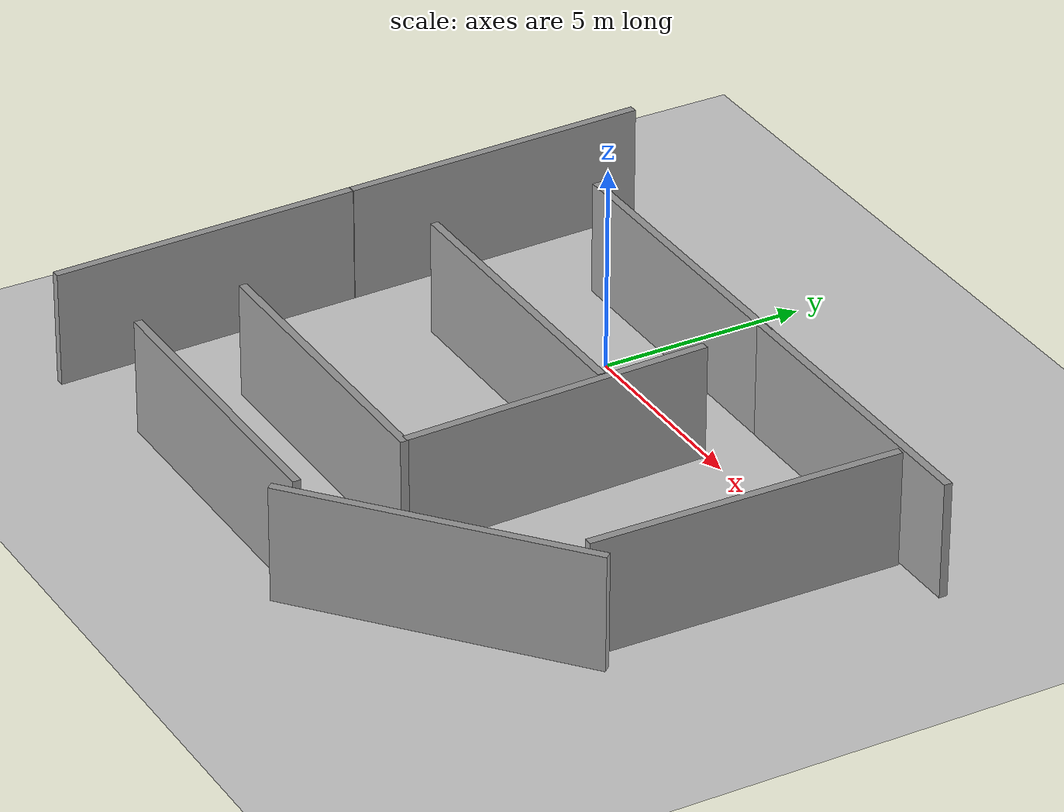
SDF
<sdf version="1.6">
 <world name="default">
  <physics name="default_physics" default="0" type="ode">
   <max_step_size>0.004</max_step_size>
   <real_time_factor>1</real_time_factor>
   <real_time_update_rate>250</real_time_update_rate>
  </physics>
  <light name="sun" type="directional">
   <pose>0 0 10 0 -0 0</pose>
   <diffuse>0.8 0.8 0.8 1</diffuse>
   <specular>0.2 0.2 0.2 1</specular>
   <attenuation>
    <range>1000</range>
    <constant>0.9</constant>
    <linear>0.01</linear>
    <quadratic>0.001</quadratic>
   </attenuation>
   <direction>-0.5 0.1 -0.9</direction>
  </light>
  <model name="ground_plane">
   <static>1</static>
   <link name="link">
    <collision name="collision">
     <geometry><plane><normal>0 0 1</normal><size>100 100</size></plane></geometry>
     <surface>
      <contact><collide_bitmask>65535</collide_bitmask></contact>
      <friction><ode><mu>100</mu><mu2>50</mu2></ode></friction>
     </surface>
    </collision>
    <visual name="visual">
     <cast_shadows>0</cast_shadows>
     <geometry><plane><normal>0 0 1</normal><size>100 100</size></plane></geometry>
     <material>
      <script><uri>file://media/materials/scripts/gazebo.material</uri><name>Gazebo/Grey</name></script>
     </material>
    </visual>
   </link>
  </model>
  <gravity>0 0 -9.8</gravity>
  <magnetic_field>6e-06 2.3e-05 -4.2e-05</magnetic_field>
  <atmosphere type="adiabatic"/>
  <scene><ambient>0.4 0.4 0.4 1</ambient><background>0.7 0.7 0.7 1</background><shadows>1</shadows></scene>
  <audio><device>default</device></audio>
  <spherical_coordinates>
   <surface_model>EARTH_WGS84</surface_model>
   <latitude_deg>0</latitude_deg>
   <longitude_deg>0</longitude_deg>
   <elevation>0</elevation>
   <heading_deg>0</heading_deg>
  </spherical_coordinates>
  <model name="grey_wall">
   <static>1</static>
   <link name="link">
    <pose>0 0 1.4 0 -0 0</pose>
    <collision name="collision"><geometry><box><size>7.5 0.2 2.8</size></box></geometry></collision>
    <visual name="visual">
     <cast_shadows>0</cast_shadows>
     <geometry><box><size>7.5 0.2 2.8</size></box></geometry>
     <material>
      <script>
       <uri>model://grey_wall/materials/scripts</uri>
       <uri>model://grey_wall/materials/textures</uri>
       <name>vrc/grey_wall</name>
      </script>
     </material>
    </visual>
   </link>
   <pose>0.512991 -2.59849 0 0 -0 0</pose>
  </model>
  <model name="grey_wall_0">
   <static>1</static>
   <link name="link">
    <pose>0 0 1.4 0 -0 0</pose>
    <collision name="collision"><geometry><box><size>7.5 0.2 2.8</size></box></geometry></collision>
    <visual name="visual">
     <cast_shadows>0</cast_shadows>
     <geometry><box><size>7.5 0.2 2.8</size></box></geometry>
     <material>
      <script>
       <uri>model://grey_wall/materials/scripts</uri>
       <uri>model://grey_wall/materials/textures</uri>
       <name>vrc/grey_wall</name>
      </script>
     </material>
    </visual>
   </link>
   <pose>0.682592 1.48671 0 0 -0 0</pose>
  </model>
  <model name="grey_wall_1">
   <static>1</static>
   <link name="link">
    <pose>0 0 1.4 0 -0 0</pose>
    <collision name="collision"><geometry><box><size>7.5 0.2 2.8</size></box></geometry></collision>
    <visual name="visual">
     <cast_shadows>0</cast_shadows>
     <geometry><box><size>7.5 0.2 2.8</size></box></geometry>
     <material>
      <script>
       <uri>model://grey_wall/materials/scripts</uri>
       <uri>model://grey_wall/materials/textures</uri>
       <name>vrc/grey_wall</name>
      </script>
     </material>
    </visual>
   </link>
   <pose>7.86812 1.48022 0 0 -0 0</pose>
  </model>
  <model name="grey_wall_2">
   <static>1</static>
   <link name="link">
    <pose>0 0 1.4 0 -0 0</pose>
    <collision name="collision"><geometry><box><size>7.5 0.2 2.8</size></box></geometry></collision>
    <visual name="visual">
     <cast_shadows>0</cast_shadows>
     <geometry><box><size>7.5 0.2 2.8</size></box></geometry>
     <material>
      <script>
       <uri>model://grey_wall/materials/scripts</uri>
       <uri>model://grey_wall/materials/textures</uri>
       <name>vrc/grey_wall</name>
      </script>
     </material>
    </visual>
   </link>
   <pose>4.42421 -3.79335 0 0 0 -1.54043</pose>
  </model>
  <model name="grey_wall_3">
   <static>1</static>
   <link name="link">
    <pose>0 0 1.4 0 -0 0</pose>
    <collision name="collision"><geometry><box><size>7.5 0.2 2.8</size></box></geometry></collision>
    <visual name="visual">
     <cast_shadows>0</cast_shadows>
     <geometry><box><size>7.5 0.2 2.8</size></box></geometry>
     <material>
      <script>
       <uri>model://grey_wall/materials/scripts</uri>
       <uri>model://grey_wall/materials/textures</uri>
       <name>vrc/grey_wall</name>
      </script>
     </material>
    </visual>
   </link>
   <pose>9.95521 -2.42838 0 0 -0 1.55469</pose>
  </model>
  <model name="grey_wall_4">
   <static>1</static>
   <link name="link">
    <pose>0 0 1.4 0 -0 0</pose>
    <collision name="collision"><geometry><box><size>7.5 0.2 2.8</size></box></geometry></collision>
    <visual name="visual">
     <cast_shadows>0</cast_shadows>
     <geometry><box><size>7.5 0.2 2.8</size></box></geometry>
     <material>
      <script>
       <uri>model://grey_wall/materials/scripts</uri>
       <uri>model://grey_wall/materials/textures</uri>
       <name>vrc/grey_wall</name>
      </script>
     </material>
    </visual>
   </link>
   <pose>0.888458 -7.60571 0 0 -0 0</pose>
  </model>
  <model name="grey_wall_4_clone">
   <static>1</static>
   <link name="link">
    <pose>0 0 1.4 0 -0 0</pose>
    <collision name="collision"><geometry><box><size>7.5 0.2 2.8</size></box></geometry></collision>
    <visual name="visual">
     <cast_shadows>0</cast_shadows>
     <geometry><box><size>7.5 0.2 2.8</size></box></geometry>
     <material>
      <script>
       <uri>model://grey_wall/materials/scripts</uri>
       <uri>model://grey_wall/materials/textures</uri>
       <name>vrc/grey_wall</name>
      </script>
     </material>
    </visual>
   </link>
   <pose>1.17861 -10.3106 0 0 -0 0</pose>
  </model>
  <model name="grey_wall_4_clone_0">
   <static>1</static>
   <link name="link">
    <pose>0 0 1.4 0 -0 0</pose>
    <collision name="collision"><geometry><box><size>7.5 0.2 2.8</size></box></geometry></collision>
    <visual name="visual">
     <cast_shadows>0</cast_shadows>
     <geometry><box><size>7.5 0.2 2.8</size></box></geometry>
     <material>
      <script>
       <uri>model://grey_wall/materials/scripts</uri>
       <uri>model://grey_wall/materials/textures</uri>
       <name>vrc/grey_wall</name>
      </script>
     </material>
    </visual>
   </link>
   <pose>7.6852 -8.47812 0 0 -0 0.698213</pose>
  </model>
  <model name="grey_wall_4_clone_1">
   <static>1</static>
   <link name="link">
    <pose>0 0 1.4 0 -0 0</pose>
    <collision name="collision"><geometry><box><size>7.5 0.2 2.8</size></box></geometry></collision>
    <visual name="visual">
     <cast_shadows>0</cast_shadows>
     <geometry><box><size>7.5 0.2 2.8</size></box></geometry>
     <material>
      <script>
       <uri>model://grey_wall/materials/scripts</uri>
       <uri>model://grey_wall/materials/textures</uri>
       <name>vrc/grey_wall</name>
      </script>
     </material>
    </visual>
   </link>
   <pose>-5.60473 0.245186 0 0 0 -1.54249</pose>
  </model>
  <model name="grey_wall_4_clone_1_clone">
   <static>1</static>
   <link name="link">
    <pose>0 0 1.4 0 -0 0</pose>
    <collision name="collision"><geometry><box><size>7.5 0.2 2.8</size></box></geometry></collision>
    <visual name="visual">
     <cast_shadows>0</cast_shadows>
     <geometry><box><size>7.5 0.2 2.8</size></box></geometry>
     <material>
      <script>
       <uri>model://grey_wall/materials/scripts</uri>
       <uri>model://grey_wall/materials/textures</uri>
       <name>vrc/grey_wall</name>
      </script>
     </material>
    </visual>
   </link>
   <pose>-5.3921 -7.26505 0 0 0 -1.54249</pose>
  </model>
 </world>
</sdf>
